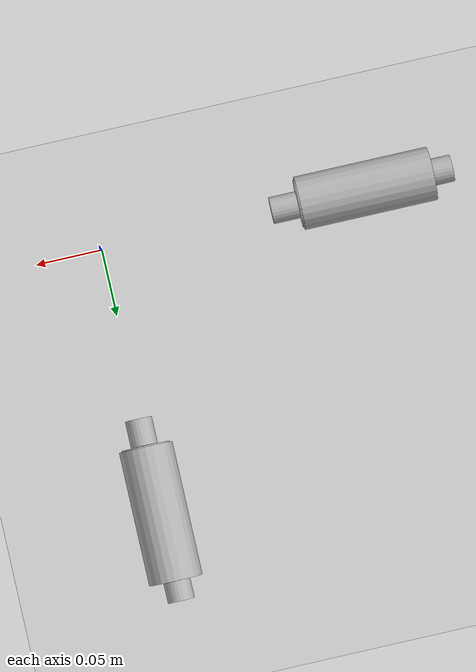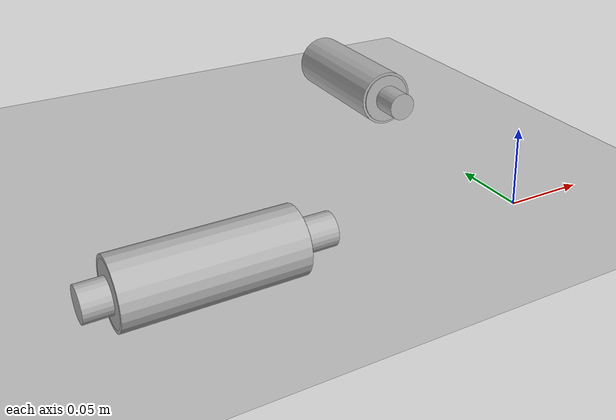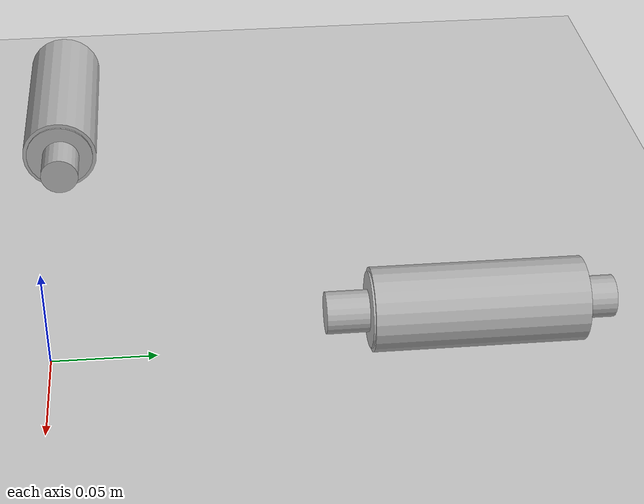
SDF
<?xml version="1.0" ?>
<sdf version="1.6">
  <world name="default">
    <scene>
      <ambient>0.5 0.5 0.5 1</ambient>
      <background>0.5 0.5 0.5 1</background>
      <shadows>0</shadows>
    </scene>

    <!-- Ground Plane -->
    <include>
      <uri>model://ground_plane</uri>
    </include>

    <!-- Sun -->
    <include>
      <uri>model://sun</uri>
    </include>

    <include>
      <name>x-actuator</name>
      <uri>model://linear_actuator</uri>

      <!--
        initial actuator position and orientation
        Actuator has outer radius of 0.02m, so it is place at z=0.02 to ensure
        that it rests on top of the ground.
      -->
      <pose>-0.2 0 0.02 0 0 0</pose>
    </include>

    <include>
      <name>y-actuator</name>
      <uri>model://linear_actuator</uri>

      <!--
        initial actuator position and orientation
        Actuator has outer radius of 0.02m, so it is place at z=0.02 to ensure
        that it rests on top of the ground.
      -->
      <pose>0 0.2 0.02 0 0 -1.5707</pose>
    </include>
  </world>
</sdf>

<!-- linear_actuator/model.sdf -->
<sdf version='1.7'>
  <model name='linear_actuator'>
    <link name='outer_cylinder'>
      <inertial>
        <mass>1.00028</mass>
        <inertia>
          <ixx>0.00123369</ixx>
          <ixy>0</ixy>
          <ixz>0</ixz>
          <iyy>0.00123369</iyy>
          <iyz>0</iyz>
          <izz>0.00080023</izz>
        </inertia>
        <pose>0 0 0 0 -0 0</pose>
      </inertial>
      <pose>0 0 0 -0.000397 1.5707 -0.000397</pose>
      <visual name='visual'>
        <pose>0 0 0 0 -0 0</pose>
        <geometry>
          <cylinder>
            <radius>0.02</radius>
            <length>0.1</length>
          </cylinder>
        </geometry>
        <material>
          <ambient>0.8 0.8 0.8 1</ambient>
          <diffuse>0.7 0.7 0.7 1</diffuse>
          <specular>0.01 0.01 0.01 1</specular>
          <emissive>0 0 0 1</emissive>
        </material>
      </visual>
      <collision name='collision'>
        <pose>0 0 0 0 -0 0</pose>
        <geometry>
          <cylinder>
            <radius>0.02</radius>
            <length>0.1</length>
          </cylinder>
        </geometry>
      </collision>
    </link>
    <link name='inner_cylinder'>
      <inertial>
        <mass>1</mass>
        <inertia>
          <ixx>0.145833</ixx>
          <ixy>0</ixy>
          <ixz>0</ixz>
          <iyy>0.145833</iyy>
          <iyz>0</iyz>
          <izz>0.125</izz>
        </inertia>
        <pose>0 0 0 0 -0 0</pose>
      </inertial>
      <pose>0.000476 6e-06 0 -0.000186 1.5707 -0.000186</pose>
      <visual name='visual'>
        <pose>0 0 0 0 -0 0</pose>
        <geometry>
          <cylinder>
            <radius>0.018</radius>
            <length>0.101</length>
          </cylinder>
        </geometry>
        <material>
          <ambient>0.3 0.3 0.3 1</ambient>
          <diffuse>0.7 0.7 0.7 1</diffuse>
          <specular>0.01 0.01 0.01 1</specular>
          <emissive>0 0 0 1</emissive>
        </material>
      </visual>
      <collision name='collision'>
        <pose>0 0 0 0 -0 0</pose>
        <geometry>
          <cylinder>
            <radius>0.018</radius>
            <length>0.101</length>
          </cylinder>
        </geometry>
      </collision>
    </link>
    <link name='gimbal_mount_point'>
      <inertial>
        <mass>1</mass>
        <inertia>
          <ixx>0.145833</ixx>
          <ixy>0</ixy>
          <ixz>0</ixz>
          <iyy>0.145833</iyy>
          <iyz>0</iyz>
          <izz>0.125</izz>
        </inertia>
        <pose>0 0 0 0 1.5707 0</pose>
      </inertial>
      <pose>0.061402 0.000702 4.3e-05 -0.001678 1.5707 -0.001678</pose>
      <visual name='visual'>
        <pose>0 0 0 0 -0 0</pose>
        <geometry>
          <cylinder>
            <radius>0.01</radius>
            <length>0.02</length>
          </cylinder>
        </geometry>
        <material>
          <ambient>0.3 0.3 0.3 1</ambient>
          <diffuse>0.7 0.7 0.7 1</diffuse>
          <specular>0.01 0.01 0.01 1</specular>
          <emissive>0 0 0 1</emissive>
        </material>
      </visual>
      <collision name='collision'>
        <pose>0 0 0 0 -0 0</pose>
        <geometry>
          <cylinder>
            <radius>0.01</radius>
            <length>0.02</length>
          </cylinder>
        </geometry>
      </collision>
    </link>
    <link name='actuator_mount_point'>
      <inertial>
        <mass>1</mass>
        <inertia>
          <ixx>0.145833</ixx>
          <ixy>0</ixy>
          <ixz>0</ixz>
          <iyy>0.145833</iyy>
          <iyz>0</iyz>
          <izz>0.125</izz>
        </inertia>
        <pose>0 0 0 0 1.5707 0</pose>
      </inertial>
      <pose>-0.057803 -0.000572 -0.000327 1.55905 1.05921 1.57041</pose>
      <visual name='visual'>
        <pose>0 0 0 0 -0 0</pose>
        <geometry>
          <cylinder>
            <radius>0.01</radius>
            <length>0.015</length>
          </cylinder>
        </geometry>
        <material>
          <ambient>0.3 0.3 0.3 1</ambient>
          <diffuse>0.7 0.7 0.7 1</diffuse>
          <specular>0.01 0.01 0.01 1</specular>
          <emissive>0 0 0 1</emissive>
        </material>
      </visual>
      <collision name='collision'>
        <pose>0 0 0 0 -0 0</pose>
        <geometry>
          <cylinder>
            <radius>0.01</radius>
            <length>0.015</length>
          </cylinder>
        </geometry>
      </collision>
    </link>
    <joint name='inner_cylinder_gimbal_joint' type='fixed'>
      <parent>inner_cylinder</parent>
      <child>gimbal_mount_point</child>
      <pose>0 0 0 0 -0 0</pose>
    </joint>
    <joint name='outer_cylinder_mount_joint' type='fixed'>
      <parent>outer_cylinder</parent>
      <child>actuator_mount_point</child>
      <pose>0 0 0 0 -0 0</pose>
    </joint>
    <joint name='linear_actuator_joint' type='prismatic'>
      <parent>outer_cylinder</parent>
      <child>inner_cylinder</child>
      <pose>0 0 0 0 -0 0</pose>
      <axis>
        <xyz>0 0 1</xyz>
        <limit>
          <lower>0</lower>
          <upper>0.102</upper> // 4" = 0.1016m
          <effort>-1</effort>
          <velocity>0.01</velocity> // 0.39 in/sec = 0.010m/sec
        </limit>
        <dynamics>
          <spring_reference>0</spring_reference>
          <spring_stiffness>0</spring_stiffness>
          <damping>0</damping>
          <friction>0</friction>
        </dynamics>
      </axis>
      <physics>
        <ode>
          <limit>
            <cfm>0</cfm>
            <erp>0.2</erp>
          </limit>
          <suspension>
            <cfm>0</cfm>
            <erp>0.2</erp>
          </suspension>
        </ode>
      </physics>
    </joint>
    <plugin name='actuator_move' filename='libgazebo_ros_actuator_move.so'>
      <ros>
        <namespace>actuator</namespace>
        <remapping>cmd_vel:=cmd_direction</remapping>
      </ros>
      <actuator_joint>linear_actuator_joint</actuator_joint>
    </plugin>
  </model>
</sdf>
